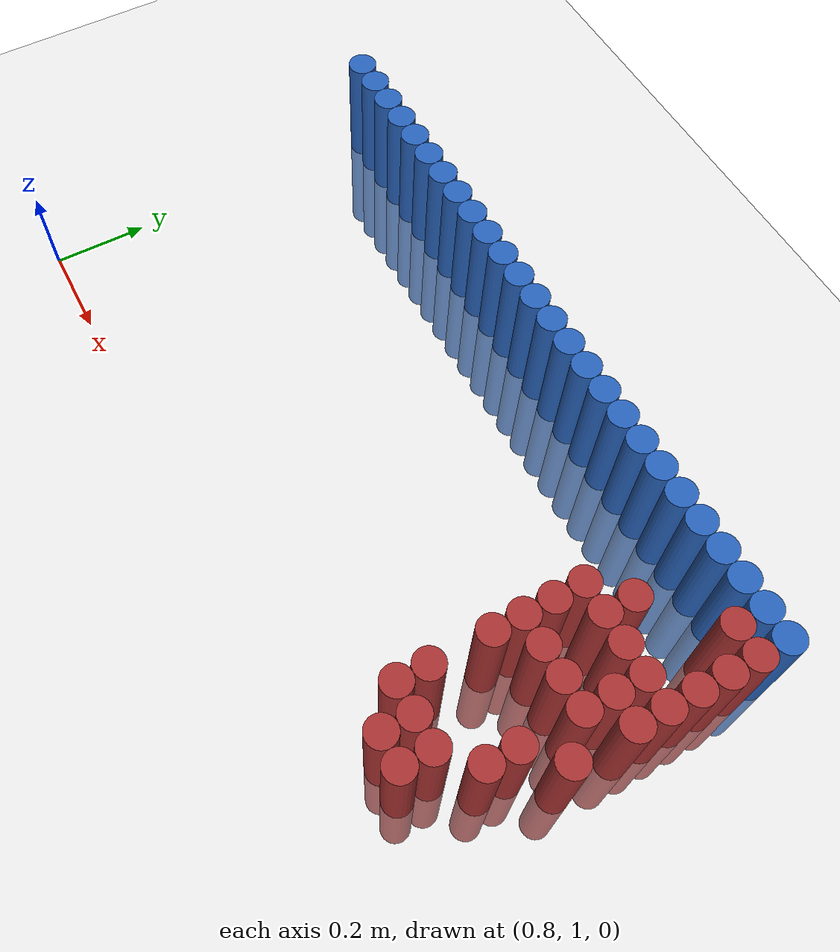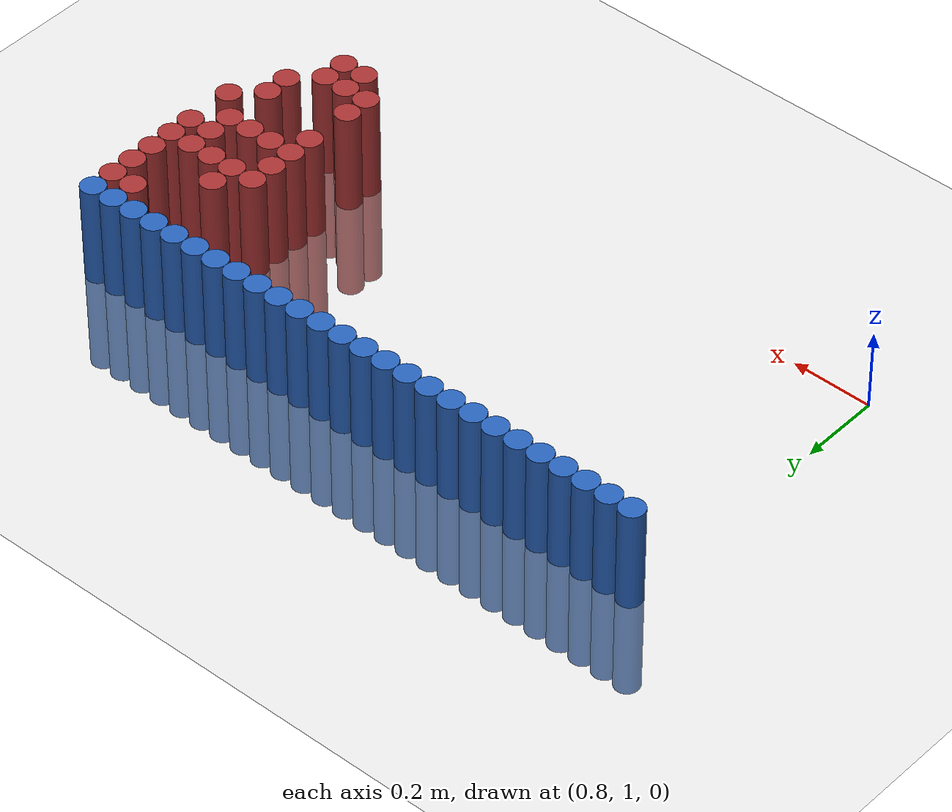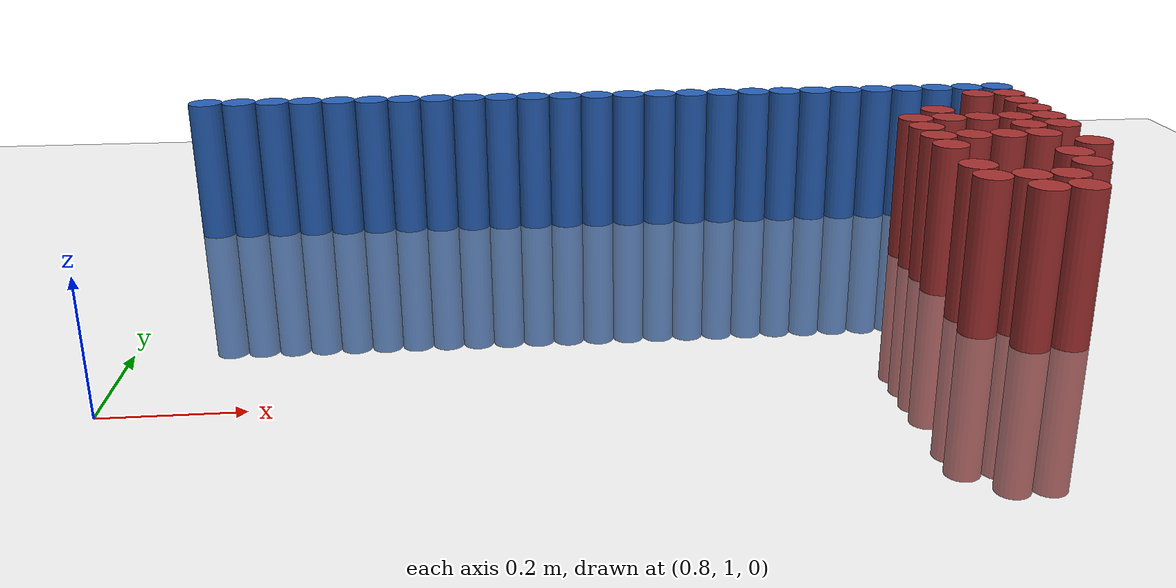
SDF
<sdf version="1.6">
 <world name="default">
  <model name="ground_plane">
   <static>1</static>
   <link name="link">
    <collision name="collision">
     <geometry><plane><normal>0 0 1</normal><size>100 100</size></plane></geometry>
     <surface><friction><ode><mu>100</mu><mu2>50</mu2></ode></friction></surface>
    </collision>
    <visual name="visual">
     <cast_shadows>0</cast_shadows>
     <geometry><plane><normal>0 0 1</normal><size>100 100</size></plane></geometry>
     <material>
      <script><uri>file://media/materials/scripts/gazebo.material</uri><name>Gazebo/Grey</name></script>
     </material>
    </visual>
   </link>
  </model>
  <model name="unit_cylinder_54">
   <static>1</static>
   <pose>0.810000 1.770000 0.000000 0.000000 0.000000 0.000000</pose>
   <link name="link">
    <inertial>
     <mass>1</mass>
     <inertia><ixx>0.145833</ixx><ixy>0</ixy><ixz>0</ixz><iyy>0.145833</iyy><iyz>0</iyz><izz>0.125</izz></inertia>
    </inertial>
    <collision name="collision">
     <geometry><cylinder><radius>0.030000</radius><length>0.5</length></cylinder></geometry>
    </collision>
    <visual name="visual">
     <geometry><cylinder><radius>0.030000</radius><length>0.5</length></cylinder></geometry>
     <material>
      <ambient>0.152000 0.379000 0.720000 1</ambient>
      <diffuse>0.152000 0.379000 0.720000 1</diffuse>
     </material>
     <material>
      <script><name>Gazebo/Grey</name><uri>file://media/materials/scripts/gazebo.material</uri></script>
     </material>
    </visual>
   </link>
  </model>
  <model name="unit_cylinder_56">
   <static>1</static>
   <pose>0.870000 1.770000 0.000000 0.000000 0.000000 0.000000</pose>
   <link name="link">
    <inertial>
     <mass>1</mass>
     <inertia><ixx>0.145833</ixx><ixy>0</ixy><ixz>0</ixz><iyy>0.145833</iyy><iyz>0</iyz><izz>0.125</izz></inertia>
    </inertial>
    <collision name="collision">
     <geometry><cylinder><radius>0.030000</radius><length>0.5</length></cylinder></geometry>
    </collision>
    <visual name="visual">
     <geometry><cylinder><radius>0.030000</radius><length>0.5</length></cylinder></geometry>
     <material>
      <ambient>0.152000 0.379000 0.720000 1</ambient>
      <diffuse>0.152000 0.379000 0.720000 1</diffuse>
     </material>
     <material>
      <script><name>Gazebo/Grey</name><uri>file://media/materials/scripts/gazebo.material</uri></script>
     </material>
    </visual>
   </link>
  </model>
  <model name="unit_cylinder_58">
   <static>1</static>
   <pose>0.930000 1.770000 0.000000 0.000000 0.000000 0.000000</pose>
   <link name="link">
    <inertial>
     <mass>1</mass>
     <inertia><ixx>0.145833</ixx><ixy>0</ixy><ixz>0</ixz><iyy>0.145833</iyy><iyz>0</iyz><izz>0.125</izz></inertia>
    </inertial>
    <collision name="collision">
     <geometry><cylinder><radius>0.030000</radius><length>0.5</length></cylinder></geometry>
    </collision>
    <visual name="visual">
     <geometry><cylinder><radius>0.030000</radius><length>0.5</length></cylinder></geometry>
     <material>
      <ambient>0.152000 0.379000 0.720000 1</ambient>
      <diffuse>0.152000 0.379000 0.720000 1</diffuse>
     </material>
     <material>
      <script><name>Gazebo/Grey</name><uri>file://media/materials/scripts/gazebo.material</uri></script>
     </material>
    </visual>
   </link>
  </model>
  <model name="unit_cylinder_60">
   <static>1</static>
   <pose>0.990000 1.770000 0.000000 0.000000 0.000000 0.000000</pose>
   <link name="link">
    <inertial>
     <mass>1</mass>
     <inertia><ixx>0.145833</ixx><ixy>0</ixy><ixz>0</ixz><iyy>0.145833</iyy><iyz>0</iyz><izz>0.125</izz></inertia>
    </inertial>
    <collision name="collision">
     <geometry><cylinder><radius>0.030000</radius><length>0.5</length></cylinder></geometry>
    </collision>
    <visual name="visual">
     <geometry><cylinder><radius>0.030000</radius><length>0.5</length></cylinder></geometry>
     <material>
      <ambient>0.152000 0.379000 0.720000 1</ambient>
      <diffuse>0.152000 0.379000 0.720000 1</diffuse>
     </material>
     <material>
      <script><name>Gazebo/Grey</name><uri>file://media/materials/scripts/gazebo.material</uri></script>
     </material>
    </visual>
   </link>
  </model>
  <model name="unit_cylinder_62">
   <static>1</static>
   <pose>1.050000 1.770000 0.000000 0.000000 0.000000 0.000000</pose>
   <link name="link">
    <inertial>
     <mass>1</mass>
     <inertia><ixx>0.145833</ixx><ixy>0</ixy><ixz>0</ixz><iyy>0.145833</iyy><iyz>0</iyz><izz>0.125</izz></inertia>
    </inertial>
    <collision name="collision">
     <geometry><cylinder><radius>0.030000</radius><length>0.5</length></cylinder></geometry>
    </collision>
    <visual name="visual">
     <geometry><cylinder><radius>0.030000</radius><length>0.5</length></cylinder></geometry>
     <material>
      <ambient>0.152000 0.379000 0.720000 1</ambient>
      <diffuse>0.152000 0.379000 0.720000 1</diffuse>
     </material>
     <material>
      <script><name>Gazebo/Grey</name><uri>file://media/materials/scripts/gazebo.material</uri></script>
     </material>
    </visual>
   </link>
  </model>
  <model name="unit_cylinder_64">
   <static>1</static>
   <pose>1.110000 1.770000 0.000000 0.000000 0.000000 0.000000</pose>
   <link name="link">
    <inertial>
     <mass>1</mass>
     <inertia><ixx>0.145833</ixx><ixy>0</ixy><ixz>0</ixz><iyy>0.145833</iyy><iyz>0</iyz><izz>0.125</izz></inertia>
    </inertial>
    <collision name="collision">
     <geometry><cylinder><radius>0.030000</radius><length>0.5</length></cylinder></geometry>
    </collision>
    <visual name="visual">
     <geometry><cylinder><radius>0.030000</radius><length>0.5</length></cylinder></geometry>
     <material>
      <ambient>0.152000 0.379000 0.720000 1</ambient>
      <diffuse>0.152000 0.379000 0.720000 1</diffuse>
     </material>
     <material>
      <script><name>Gazebo/Grey</name><uri>file://media/materials/scripts/gazebo.material</uri></script>
     </material>
    </visual>
   </link>
  </model>
  <model name="unit_cylinder_66">
   <static>1</static>
   <pose>1.170000 1.770000 0.000000 0.000000 0.000000 0.000000</pose>
   <link name="link">
    <inertial>
     <mass>1</mass>
     <inertia><ixx>0.145833</ixx><ixy>0</ixy><ixz>0</ixz><iyy>0.145833</iyy><iyz>0</iyz><izz>0.125</izz></inertia>
    </inertial>
    <collision name="collision">
     <geometry><cylinder><radius>0.030000</radius><length>0.5</length></cylinder></geometry>
    </collision>
    <visual name="visual">
     <geometry><cylinder><radius>0.030000</radius><length>0.5</length></cylinder></geometry>
     <material>
      <ambient>0.152000 0.379000 0.720000 1</ambient>
      <diffuse>0.152000 0.379000 0.720000 1</diffuse>
     </material>
     <material>
      <script><name>Gazebo/Grey</name><uri>file://media/materials/scripts/gazebo.material</uri></script>
     </material>
    </visual>
   </link>
  </model>
  <model name="unit_cylinder_68">
   <static>1</static>
   <pose>1.230000 1.770000 0.000000 0.000000 0.000000 0.000000</pose>
   <link name="link">
    <inertial>
     <mass>1</mass>
     <inertia><ixx>0.145833</ixx><ixy>0</ixy><ixz>0</ixz><iyy>0.145833</iyy><iyz>0</iyz><izz>0.125</izz></inertia>
    </inertial>
    <collision name="collision">
     <geometry><cylinder><radius>0.030000</radius><length>0.5</length></cylinder></geometry>
    </collision>
    <visual name="visual">
     <geometry><cylinder><radius>0.030000</radius><length>0.5</length></cylinder></geometry>
     <material>
      <ambient>0.152000 0.379000 0.720000 1</ambient>
      <diffuse>0.152000 0.379000 0.720000 1</diffuse>
     </material>
     <material>
      <script><name>Gazebo/Grey</name><uri>file://media/materials/scripts/gazebo.material</uri></script>
     </material>
    </visual>
   </link>
  </model>
  <model name="unit_cylinder_70">
   <static>1</static>
   <pose>1.290000 1.770000 0.000000 0.000000 0.000000 0.000000</pose>
   <link name="link">
    <inertial>
     <mass>1</mass>
     <inertia><ixx>0.145833</ixx><ixy>0</ixy><ixz>0</ixz><iyy>0.145833</iyy><iyz>0</iyz><izz>0.125</izz></inertia>
    </inertial>
    <collision name="collision">
     <geometry><cylinder><radius>0.030000</radius><length>0.5</length></cylinder></geometry>
    </collision>
    <visual name="visual">
     <geometry><cylinder><radius>0.030000</radius><length>0.5</length></cylinder></geometry>
     <material>
      <ambient>0.152000 0.379000 0.720000 1</ambient>
      <diffuse>0.152000 0.379000 0.720000 1</diffuse>
     </material>
     <material>
      <script><name>Gazebo/Grey</name><uri>file://media/materials/scripts/gazebo.material</uri></script>
     </material>
    </visual>
   </link>
  </model>
  <model name="unit_cylinder_72">
   <static>1</static>
   <pose>1.350000 1.770000 0.000000 0.000000 0.000000 0.000000</pose>
   <link name="link">
    <inertial>
     <mass>1</mass>
     <inertia><ixx>0.145833</ixx><ixy>0</ixy><ixz>0</ixz><iyy>0.145833</iyy><iyz>0</iyz><izz>0.125</izz></inertia>
    </inertial>
    <collision name="collision">
     <geometry><cylinder><radius>0.030000</radius><length>0.5</length></cylinder></geometry>
    </collision>
    <visual name="visual">
     <geometry><cylinder><radius>0.030000</radius><length>0.5</length></cylinder></geometry>
     <material>
      <ambient>0.152000 0.379000 0.720000 1</ambient>
      <diffuse>0.152000 0.379000 0.720000 1</diffuse>
     </material>
     <material>
      <script><name>Gazebo/Grey</name><uri>file://media/materials/scripts/gazebo.material</uri></script>
     </material>
    </visual>
   </link>
  </model>
  <model name="unit_cylinder_74">
   <static>1</static>
   <pose>1.410000 1.770000 0.000000 0.000000 0.000000 0.000000</pose>
   <link name="link">
    <inertial>
     <mass>1</mass>
     <inertia><ixx>0.145833</ixx><ixy>0</ixy><ixz>0</ixz><iyy>0.145833</iyy><iyz>0</iyz><izz>0.125</izz></inertia>
    </inertial>
    <collision name="collision">
     <geometry><cylinder><radius>0.030000</radius><length>0.5</length></cylinder></geometry>
    </collision>
    <visual name="visual">
     <geometry><cylinder><radius>0.030000</radius><length>0.5</length></cylinder></geometry>
     <material>
      <ambient>0.152000 0.379000 0.720000 1</ambient>
      <diffuse>0.152000 0.379000 0.720000 1</diffuse>
     </material>
     <material>
      <script><name>Gazebo/Grey</name><uri>file://media/materials/scripts/gazebo.material</uri></script>
     </material>
    </visual>
   </link>
  </model>
  <model name="unit_cylinder_76">
   <static>1</static>
   <pose>1.470000 1.770000 0.000000 0.000000 0.000000 0.000000</pose>
   <link name="link">
    <inertial>
     <mass>1</mass>
     <inertia><ixx>0.145833</ixx><ixy>0</ixy><ixz>0</ixz><iyy>0.145833</iyy><iyz>0</iyz><izz>0.125</izz></inertia>
    </inertial>
    <collision name="collision">
     <geometry><cylinder><radius>0.030000</radius><length>0.5</length></cylinder></geometry>
    </collision>
    <visual name="visual">
     <geometry><cylinder><radius>0.030000</radius><length>0.5</length></cylinder></geometry>
     <material>
      <ambient>0.152000 0.379000 0.720000 1</ambient>
      <diffuse>0.152000 0.379000 0.720000 1</diffuse>
     </material>
     <material>
      <script><name>Gazebo/Grey</name><uri>file://media/materials/scripts/gazebo.material</uri></script>
     </material>
    </visual>
   </link>
  </model>
  <model name="unit_cylinder_78">
   <static>1</static>
   <pose>1.530000 1.770000 0.000000 0.000000 0.000000 0.000000</pose>
   <link name="link">
    <inertial>
     <mass>1</mass>
     <inertia><ixx>0.145833</ixx><ixy>0</ixy><ixz>0</ixz><iyy>0.145833</iyy><iyz>0</iyz><izz>0.125</izz></inertia>
    </inertial>
    <collision name="collision">
     <geometry><cylinder><radius>0.030000</radius><length>0.5</length></cylinder></geometry>
    </collision>
    <visual name="visual">
     <geometry><cylinder><radius>0.030000</radius><length>0.5</length></cylinder></geometry>
     <material>
      <ambient>0.152000 0.379000 0.720000 1</ambient>
      <diffuse>0.152000 0.379000 0.720000 1</diffuse>
     </material>
     <material>
      <script><name>Gazebo/Grey</name><uri>file://media/materials/scripts/gazebo.material</uri></script>
     </material>
    </visual>
   </link>
  </model>
  <model name="unit_cylinder_80">
   <static>1</static>
   <pose>1.590000 1.770000 0.000000 0.000000 0.000000 0.000000</pose>
   <link name="link">
    <inertial>
     <mass>1</mass>
     <inertia><ixx>0.145833</ixx><ixy>0</ixy><ixz>0</ixz><iyy>0.145833</iyy><iyz>0</iyz><izz>0.125</izz></inertia>
    </inertial>
    <collision name="collision">
     <geometry><cylinder><radius>0.030000</radius><length>0.5</length></cylinder></geometry>
    </collision>
    <visual name="visual">
     <geometry><cylinder><radius>0.030000</radius><length>0.5</length></cylinder></geometry>
     <material>
      <ambient>0.152000 0.379000 0.720000 1</ambient>
      <diffuse>0.152000 0.379000 0.720000 1</diffuse>
     </material>
     <material>
      <script><name>Gazebo/Grey</name><uri>file://media/materials/scripts/gazebo.material</uri></script>
     </material>
    </visual>
   </link>
  </model>
  <model name="unit_cylinder_82">
   <static>1</static>
   <pose>1.650000 1.770000 0.000000 0.000000 0.000000 0.000000</pose>
   <link name="link">
    <inertial>
     <mass>1</mass>
     <inertia><ixx>0.145833</ixx><ixy>0</ixy><ixz>0</ixz><iyy>0.145833</iyy><iyz>0</iyz><izz>0.125</izz></inertia>
    </inertial>
    <collision name="collision">
     <geometry><cylinder><radius>0.030000</radius><length>0.5</length></cylinder></geometry>
    </collision>
    <visual name="visual">
     <geometry><cylinder><radius>0.030000</radius><length>0.5</length></cylinder></geometry>
     <material>
      <ambient>0.152000 0.379000 0.720000 1</ambient>
      <diffuse>0.152000 0.379000 0.720000 1</diffuse>
     </material>
     <material>
      <script><name>Gazebo/Grey</name><uri>file://media/materials/scripts/gazebo.material</uri></script>
     </material>
    </visual>
   </link>
  </model>
  <model name="unit_cylinder_84">
   <static>1</static>
   <pose>1.710000 1.770000 0.000000 0.000000 0.000000 0.000000</pose>
   <link name="link">
    <inertial>
     <mass>1</mass>
     <inertia><ixx>0.145833</ixx><ixy>0</ixy><ixz>0</ixz><iyy>0.145833</iyy><iyz>0</iyz><izz>0.125</izz></inertia>
    </inertial>
    <collision name="collision">
     <geometry><cylinder><radius>0.030000</radius><length>0.5</length></cylinder></geometry>
    </collision>
    <visual name="visual">
     <geometry><cylinder><radius>0.030000</radius><length>0.5</length></cylinder></geometry>
     <material>
      <ambient>0.152000 0.379000 0.720000 1</ambient>
      <diffuse>0.152000 0.379000 0.720000 1</diffuse>
     </material>
     <material>
      <script><name>Gazebo/Grey</name><uri>file://media/materials/scripts/gazebo.material</uri></script>
     </material>
    </visual>
   </link>
  </model>
  <model name="unit_cylinder_86">
   <static>1</static>
   <pose>1.770000 1.770000 0.000000 0.000000 0.000000 0.000000</pose>
   <link name="link">
    <inertial>
     <mass>1</mass>
     <inertia><ixx>0.145833</ixx><ixy>0</ixy><ixz>0</ixz><iyy>0.145833</iyy><iyz>0</iyz><izz>0.125</izz></inertia>
    </inertial>
    <collision name="collision">
     <geometry><cylinder><radius>0.030000</radius><length>0.5</length></cylinder></geometry>
    </collision>
    <visual name="visual">
     <geometry><cylinder><radius>0.030000</radius><length>0.5</length></cylinder></geometry>
     <material>
      <ambient>0.152000 0.379000 0.720000 1</ambient>
      <diffuse>0.152000 0.379000 0.720000 1</diffuse>
     </material>
     <material>
      <script><name>Gazebo/Grey</name><uri>file://media/materials/scripts/gazebo.material</uri></script>
     </material>
    </visual>
   </link>
  </model>
  <model name="unit_cylinder_88">
   <static>1</static>
   <pose>1.830000 1.770000 0.000000 0.000000 0.000000 0.000000</pose>
   <link name="link">
    <inertial>
     <mass>1</mass>
     <inertia><ixx>0.145833</ixx><ixy>0</ixy><ixz>0</ixz><iyy>0.145833</iyy><iyz>0</iyz><izz>0.125</izz></inertia>
    </inertial>
    <collision name="collision">
     <geometry><cylinder><radius>0.030000</radius><length>0.5</length></cylinder></geometry>
    </collision>
    <visual name="visual">
     <geometry><cylinder><radius>0.030000</radius><length>0.5</length></cylinder></geometry>
     <material>
      <ambient>0.152000 0.379000 0.720000 1</ambient>
      <diffuse>0.152000 0.379000 0.720000 1</diffuse>
     </material>
     <material>
      <script><name>Gazebo/Grey</name><uri>file://media/materials/scripts/gazebo.material</uri></script>
     </material>
    </visual>
   </link>
  </model>
  <model name="unit_cylinder_90">
   <static>1</static>
   <pose>1.890000 1.770000 0.000000 0.000000 0.000000 0.000000</pose>
   <link name="link">
    <inertial>
     <mass>1</mass>
     <inertia><ixx>0.145833</ixx><ixy>0</ixy><ixz>0</ixz><iyy>0.145833</iyy><iyz>0</iyz><izz>0.125</izz></inertia>
    </inertial>
    <collision name="collision">
     <geometry><cylinder><radius>0.030000</radius><length>0.5</length></cylinder></geometry>
    </collision>
    <visual name="visual">
     <geometry><cylinder><radius>0.030000</radius><length>0.5</length></cylinder></geometry>
     <material>
      <ambient>0.152000 0.379000 0.720000 1</ambient>
      <diffuse>0.152000 0.379000 0.720000 1</diffuse>
     </material>
     <material>
      <script><name>Gazebo/Grey</name><uri>file://media/materials/scripts/gazebo.material</uri></script>
     </material>
    </visual>
   </link>
  </model>
  <model name="unit_cylinder_92">
   <static>1</static>
   <pose>1.950000 1.770000 0.000000 0.000000 0.000000 0.000000</pose>
   <link name="link">
    <inertial>
     <mass>1</mass>
     <inertia><ixx>0.145833</ixx><ixy>0</ixy><ixz>0</ixz><iyy>0.145833</iyy><iyz>0</iyz><izz>0.125</izz></inertia>
    </inertial>
    <collision name="collision">
     <geometry><cylinder><radius>0.030000</radius><length>0.5</length></cylinder></geometry>
    </collision>
    <visual name="visual">
     <geometry><cylinder><radius>0.030000</radius><length>0.5</length></cylinder></geometry>
     <material>
      <ambient>0.152000 0.379000 0.720000 1</ambient>
      <diffuse>0.152000 0.379000 0.720000 1</diffuse>
     </material>
     <material>
      <script><name>Gazebo/Grey</name><uri>file://media/materials/scripts/gazebo.material</uri></script>
     </material>
    </visual>
   </link>
  </model>
  <model name="unit_cylinder_94">
   <static>1</static>
   <pose>2.010000 1.770000 0.000000 0.000000 0.000000 0.000000</pose>
   <link name="link">
    <inertial>
     <mass>1</mass>
     <inertia><ixx>0.145833</ixx><ixy>0</ixy><ixz>0</ixz><iyy>0.145833</iyy><iyz>0</iyz><izz>0.125</izz></inertia>
    </inertial>
    <collision name="collision">
     <geometry><cylinder><radius>0.030000</radius><length>0.5</length></cylinder></geometry>
    </collision>
    <visual name="visual">
     <geometry><cylinder><radius>0.030000</radius><length>0.5</length></cylinder></geometry>
     <material>
      <ambient>0.152000 0.379000 0.720000 1</ambient>
      <diffuse>0.152000 0.379000 0.720000 1</diffuse>
     </material>
     <material>
      <script><name>Gazebo/Grey</name><uri>file://media/materials/scripts/gazebo.material</uri></script>
     </material>
    </visual>
   </link>
  </model>
  <model name="unit_cylinder_95">
   <static>1</static>
   <pose>2.070000 1.770000 0.000000 0.000000 0.000000 0.000000</pose>
   <link name="link">
    <inertial>
     <mass>1</mass>
     <inertia><ixx>0.145833</ixx><ixy>0</ixy><ixz>0</ixz><iyy>0.145833</iyy><iyz>0</iyz><izz>0.125</izz></inertia>
    </inertial>
    <collision name="collision">
     <geometry><cylinder><radius>0.030000</radius><length>0.5</length></cylinder></geometry>
    </collision>
    <visual name="visual">
     <geometry><cylinder><radius>0.030000</radius><length>0.5</length></cylinder></geometry>
     <material>
      <ambient>0.152000 0.379000 0.720000 1</ambient>
      <diffuse>0.152000 0.379000 0.720000 1</diffuse>
     </material>
     <material>
      <script><name>Gazebo/Grey</name><uri>file://media/materials/scripts/gazebo.material</uri></script>
     </material>
    </visual>
   </link>
  </model>
  <model name="unit_cylinder_96">
   <static>1</static>
   <pose>2.130000 1.770000 0.000000 0.000000 0.000000 0.000000</pose>
   <link name="link">
    <inertial>
     <mass>1</mass>
     <inertia><ixx>0.145833</ixx><ixy>0</ixy><ixz>0</ixz><iyy>0.145833</iyy><iyz>0</iyz><izz>0.125</izz></inertia>
    </inertial>
    <collision name="collision">
     <geometry><cylinder><radius>0.030000</radius><length>0.5</length></cylinder></geometry>
    </collision>
    <visual name="visual">
     <geometry><cylinder><radius>0.030000</radius><length>0.5</length></cylinder></geometry>
     <material>
      <ambient>0.152000 0.379000 0.720000 1</ambient>
      <diffuse>0.152000 0.379000 0.720000 1</diffuse>
     </material>
     <material>
      <script><name>Gazebo/Grey</name><uri>file://media/materials/scripts/gazebo.material</uri></script>
     </material>
    </visual>
   </link>
  </model>
  <model name="unit_cylinder_97">
   <static>1</static>
   <pose>2.190000 1.770000 0.000000 0.000000 0.000000 0.000000</pose>
   <link name="link">
    <inertial>
     <mass>1</mass>
     <inertia><ixx>0.145833</ixx><ixy>0</ixy><ixz>0</ixz><iyy>0.145833</iyy><iyz>0</iyz><izz>0.125</izz></inertia>
    </inertial>
    <collision name="collision">
     <geometry><cylinder><radius>0.030000</radius><length>0.5</length></cylinder></geometry>
    </collision>
    <visual name="visual">
     <geometry><cylinder><radius>0.030000</radius><length>0.5</length></cylinder></geometry>
     <material>
      <ambient>0.152000 0.379000 0.720000 1</ambient>
      <diffuse>0.152000 0.379000 0.720000 1</diffuse>
     </material>
     <material>
      <script><name>Gazebo/Grey</name><uri>file://media/materials/scripts/gazebo.material</uri></script>
     </material>
    </visual>
   </link>
  </model>
  <model name="unit_cylinder_98">
   <static>1</static>
   <pose>2.250000 1.770000 0.000000 0.000000 0.000000 0.000000</pose>
   <link name="link">
    <inertial>
     <mass>1</mass>
     <inertia><ixx>0.145833</ixx><ixy>0</ixy><ixz>0</ixz><iyy>0.145833</iyy><iyz>0</iyz><izz>0.125</izz></inertia>
    </inertial>
    <collision name="collision">
     <geometry><cylinder><radius>0.030000</radius><length>0.5</length></cylinder></geometry>
    </collision>
    <visual name="visual">
     <geometry><cylinder><radius>0.030000</radius><length>0.5</length></cylinder></geometry>
     <material>
      <ambient>0.152000 0.379000 0.720000 1</ambient>
      <diffuse>0.152000 0.379000 0.720000 1</diffuse>
     </material>
     <material>
      <script><name>Gazebo/Grey</name><uri>file://media/materials/scripts/gazebo.material</uri></script>
     </material>
    </visual>
   </link>
  </model>
  <model name="unit_cylinder_99">
   <static>1</static>
   <pose>2.310000 1.770000 0.000000 0.000000 0.000000 0.000000</pose>
   <link name="link">
    <inertial>
     <mass>1</mass>
     <inertia><ixx>0.145833</ixx><ixy>0</ixy><ixz>0</ixz><iyy>0.145833</iyy><iyz>0</iyz><izz>0.125</izz></inertia>
    </inertial>
    <collision name="collision">
     <geometry><cylinder><radius>0.030000</radius><length>0.5</length></cylinder></geometry>
    </collision>
    <visual name="visual">
     <geometry><cylinder><radius>0.030000</radius><length>0.5</length></cylinder></geometry>
     <material>
      <ambient>0.152000 0.379000 0.720000 1</ambient>
      <diffuse>0.152000 0.379000 0.720000 1</diffuse>
     </material>
     <material>
      <script><name>Gazebo/Grey</name><uri>file://media/materials/scripts/gazebo.material</uri></script>
     </material>
    </visual>
   </link>
  </model>
  <model name="unit_cylinder_125">
   <static>1</static>
   <pose>2.250000 1.710000 0.000000 0.000000 0.000000 0.000000</pose>
   <link name="link">
    <inertial>
     <mass>1</mass>
     <inertia><ixx>0.145833</ixx><ixy>0</ixy><ixz>0</ixz><iyy>0.145833</iyy><iyz>0</iyz><izz>0.125</izz></inertia>
    </inertial>
    <collision name="collision">
     <geometry><cylinder><radius>0.030000</radius><length>0.5</length></cylinder></geometry>
    </collision>
    <visual name="visual">
     <geometry><cylinder><radius>0.030000</radius><length>0.5</length></cylinder></geometry>
     <material>
      <ambient>0.648000 0.192000 0.192000 1</ambient>
      <diffuse>0.648000 0.192000 0.192000 1</diffuse>
     </material>
     <material>
      <script><name>Gazebo/Grey</name><uri>file://media/materials/scripts/gazebo.material</uri></script>
     </material>
    </visual>
   </link>
  </model>
  <model name="unit_cylinder_126">
   <static>1</static>
   <pose>2.310000 1.710000 0.000000 0.000000 0.000000 0.000000</pose>
   <link name="link">
    <inertial>
     <mass>1</mass>
     <inertia><ixx>0.145833</ixx><ixy>0</ixy><ixz>0</ixz><iyy>0.145833</iyy><iyz>0</iyz><izz>0.125</izz></inertia>
    </inertial>
    <collision name="collision">
     <geometry><cylinder><radius>0.030000</radius><length>0.5</length></cylinder></geometry>
    </collision>
    <visual name="visual">
     <geometry><cylinder><radius>0.030000</radius><length>0.5</length></cylinder></geometry>
     <material>
      <ambient>0.648000 0.192000 0.192000 1</ambient>
      <diffuse>0.648000 0.192000 0.192000 1</diffuse>
     </material>
     <material>
      <script><name>Gazebo/Grey</name><uri>file://media/materials/scripts/gazebo.material</uri></script>
     </material>
    </visual>
   </link>
  </model>
  <model name="unit_cylinder_136">
   <static>1</static>
   <pose>2.310000 1.650000 0.000000 0.000000 0.000000 0.000000</pose>
   <link name="link">
    <inertial>
     <mass>1</mass>
     <inertia><ixx>0.145833</ixx><ixy>0</ixy><ixz>0</ixz><iyy>0.145833</iyy><iyz>0</iyz><izz>0.125</izz></inertia>
    </inertial>
    <collision name="collision">
     <geometry><cylinder><radius>0.030000</radius><length>0.5</length></cylinder></geometry>
    </collision>
    <visual name="visual">
     <geometry><cylinder><radius>0.030000</radius><length>0.5</length></cylinder></geometry>
     <material>
      <ambient>0.648000 0.192000 0.192000 1</ambient>
      <diffuse>0.648000 0.192000 0.192000 1</diffuse>
     </material>
     <material>
      <script><name>Gazebo/Grey</name><uri>file://media/materials/scripts/gazebo.material</uri></script>
     </material>
    </visual>
   </link>
  </model>
  <model name="unit_cylinder_142">
   <static>1</static>
   <pose>2.130000 1.590000 0.000000 0.000000 0.000000 0.000000</pose>
   <link name="link">
    <inertial>
     <mass>1</mass>
     <inertia><ixx>0.145833</ixx><ixy>0</ixy><ixz>0</ixz><iyy>0.145833</iyy><iyz>0</iyz><izz>0.125</izz></inertia>
    </inertial>
    <collision name="collision">
     <geometry><cylinder><radius>0.030000</radius><length>0.5</length></cylinder></geometry>
    </collision>
    <visual name="visual">
     <geometry><cylinder><radius>0.030000</radius><length>0.5</length></cylinder></geometry>
     <material>
      <ambient>0.648000 0.192000 0.192000 1</ambient>
      <diffuse>0.648000 0.192000 0.192000 1</diffuse>
     </material>
     <material>
      <script><name>Gazebo/Grey</name><uri>file://media/materials/scripts/gazebo.material</uri></script>
     </material>
    </visual>
   </link>
  </model>
  <model name="unit_cylinder_143">
   <static>1</static>
   <pose>2.310000 1.590000 0.000000 0.000000 0.000000 0.000000</pose>
   <link name="link">
    <inertial>
     <mass>1</mass>
     <inertia><ixx>0.145833</ixx><ixy>0</ixy><ixz>0</ixz><iyy>0.145833</iyy><iyz>0</iyz><izz>0.125</izz></inertia>
    </inertial>
    <collision name="collision">
     <geometry><cylinder><radius>0.030000</radius><length>0.5</length></cylinder></geometry>
    </collision>
    <visual name="visual">
     <geometry><cylinder><radius>0.030000</radius><length>0.5</length></cylinder></geometry>
     <material>
      <ambient>0.648000 0.192000 0.192000 1</ambient>
      <diffuse>0.648000 0.192000 0.192000 1</diffuse>
     </material>
     <material>
      <script><name>Gazebo/Grey</name><uri>file://media/materials/scripts/gazebo.material</uri></script>
     </material>
    </visual>
   </link>
  </model>
  <model name="unit_cylinder_152">
   <static>1</static>
   <pose>2.070000 1.530000 0.000000 0.000000 0.000000 0.000000</pose>
   <link name="link">
    <inertial>
     <mass>1</mass>
     <inertia><ixx>0.145833</ixx><ixy>0</ixy><ixz>0</ixz><iyy>0.145833</iyy><iyz>0</iyz><izz>0.125</izz></inertia>
    </inertial>
    <collision name="collision">
     <geometry><cylinder><radius>0.030000</radius><length>0.5</length></cylinder></geometry>
    </collision>
    <visual name="visual">
     <geometry><cylinder><radius>0.030000</radius><length>0.5</length></cylinder></geometry>
     <material>
      <ambient>0.648000 0.192000 0.192000 1</ambient>
      <diffuse>0.648000 0.192000 0.192000 1</diffuse>
     </material>
     <material>
      <script><name>Gazebo/Grey</name><uri>file://media/materials/scripts/gazebo.material</uri></script>
     </material>
    </visual>
   </link>
  </model>
  <model name="unit_cylinder_153">
   <static>1</static>
   <pose>2.130000 1.530000 0.000000 0.000000 0.000000 0.000000</pose>
   <link name="link">
    <inertial>
     <mass>1</mass>
     <inertia><ixx>0.145833</ixx><ixy>0</ixy><ixz>0</ixz><iyy>0.145833</iyy><iyz>0</iyz><izz>0.125</izz></inertia>
    </inertial>
    <collision name="collision">
     <geometry><cylinder><radius>0.030000</radius><length>0.5</length></cylinder></geometry>
    </collision>
    <visual name="visual">
     <geometry><cylinder><radius>0.030000</radius><length>0.5</length></cylinder></geometry>
     <material>
      <ambient>0.648000 0.192000 0.192000 1</ambient>
      <diffuse>0.648000 0.192000 0.192000 1</diffuse>
     </material>
     <material>
      <script><name>Gazebo/Grey</name><uri>file://media/materials/scripts/gazebo.material</uri></script>
     </material>
    </visual>
   </link>
  </model>
  <model name="unit_cylinder_154">
   <static>1</static>
   <pose>2.190000 1.530000 0.000000 0.000000 0.000000 0.000000</pose>
   <link name="link">
    <inertial>
     <mass>1</mass>
     <inertia><ixx>0.145833</ixx><ixy>0</ixy><ixz>0</ixz><iyy>0.145833</iyy><iyz>0</iyz><izz>0.125</izz></inertia>
    </inertial>
    <collision name="collision">
     <geometry><cylinder><radius>0.030000</radius><length>0.5</length></cylinder></geometry>
    </collision>
    <visual name="visual">
     <geometry><cylinder><radius>0.030000</radius><length>0.5</length></cylinder></geometry>
     <material>
      <ambient>0.648000 0.192000 0.192000 1</ambient>
      <diffuse>0.648000 0.192000 0.192000 1</diffuse>
     </material>
     <material>
      <script><name>Gazebo/Grey</name><uri>file://media/materials/scripts/gazebo.material</uri></script>
     </material>
    </visual>
   </link>
  </model>
  <model name="unit_cylinder_155">
   <static>1</static>
   <pose>2.250000 1.530000 0.000000 0.000000 0.000000 0.000000</pose>
   <link name="link">
    <inertial>
     <mass>1</mass>
     <inertia><ixx>0.145833</ixx><ixy>0</ixy><ixz>0</ixz><iyy>0.145833</iyy><iyz>0</iyz><izz>0.125</izz></inertia>
    </inertial>
    <collision name="collision">
     <geometry><cylinder><radius>0.030000</radius><length>0.5</length></cylinder></geometry>
    </collision>
    <visual name="visual">
     <geometry><cylinder><radius>0.030000</radius><length>0.5</length></cylinder></geometry>
     <material>
      <ambient>0.648000 0.192000 0.192000 1</ambient>
      <diffuse>0.648000 0.192000 0.192000 1</diffuse>
     </material>
     <material>
      <script><name>Gazebo/Grey</name><uri>file://media/materials/scripts/gazebo.material</uri></script>
     </material>
    </visual>
   </link>
  </model>
  <model name="unit_cylinder_156">
   <static>1</static>
   <pose>2.310000 1.530000 0.000000 0.000000 0.000000 0.000000</pose>
   <link name="link">
    <inertial>
     <mass>1</mass>
     <inertia><ixx>0.145833</ixx><ixy>0</ixy><ixz>0</ixz><iyy>0.145833</iyy><iyz>0</iyz><izz>0.125</izz></inertia>
    </inertial>
    <collision name="collision">
     <geometry><cylinder><radius>0.030000</radius><length>0.5</length></cylinder></geometry>
    </collision>
    <visual name="visual">
     <geometry><cylinder><radius>0.030000</radius><length>0.5</length></cylinder></geometry>
     <material>
      <ambient>0.648000 0.192000 0.192000 1</ambient>
      <diffuse>0.648000 0.192000 0.192000 1</diffuse>
     </material>
     <material>
      <script><name>Gazebo/Grey</name><uri>file://media/materials/scripts/gazebo.material</uri></script>
     </material>
    </visual>
   </link>
  </model>
  <model name="unit_cylinder_168">
   <static>1</static>
   <pose>2.070000 1.470000 0.000000 0.000000 0.000000 0.000000</pose>
   <link name="link">
    <inertial>
     <mass>1</mass>
     <inertia><ixx>0.145833</ixx><ixy>0</ixy><ixz>0</ixz><iyy>0.145833</iyy><iyz>0</iyz><izz>0.125</izz></inertia>
    </inertial>
    <collision name="collision">
     <geometry><cylinder><radius>0.030000</radius><length>0.5</length></cylinder></geometry>
    </collision>
    <visual name="visual">
     <geometry><cylinder><radius>0.030000</radius><length>0.5</length></cylinder></geometry>
     <material>
      <ambient>0.648000 0.192000 0.192000 1</ambient>
      <diffuse>0.648000 0.192000 0.192000 1</diffuse>
     </material>
     <material>
      <script><name>Gazebo/Grey</name><uri>file://media/materials/scripts/gazebo.material</uri></script>
     </material>
    </visual>
   </link>
  </model>
  <model name="unit_cylinder_169">
   <static>1</static>
   <pose>2.250000 1.470000 0.000000 0.000000 0.000000 0.000000</pose>
   <link name="link">
    <inertial>
     <mass>1</mass>
     <inertia><ixx>0.145833</ixx><ixy>0</ixy><ixz>0</ixz><iyy>0.145833</iyy><iyz>0</iyz><izz>0.125</izz></inertia>
    </inertial>
    <collision name="collision">
     <geometry><cylinder><radius>0.030000</radius><length>0.5</length></cylinder></geometry>
    </collision>
    <visual name="visual">
     <geometry><cylinder><radius>0.030000</radius><length>0.5</length></cylinder></geometry>
     <material>
      <ambient>0.648000 0.192000 0.192000 1</ambient>
      <diffuse>0.648000 0.192000 0.192000 1</diffuse>
     </material>
     <material>
      <script><name>Gazebo/Grey</name><uri>file://media/materials/scripts/gazebo.material</uri></script>
     </material>
    </visual>
   </link>
  </model>
  <model name="unit_cylinder_170">
   <static>1</static>
   <pose>2.310000 1.470000 0.000000 0.000000 0.000000 0.000000</pose>
   <link name="link">
    <inertial>
     <mass>1</mass>
     <inertia><ixx>0.145833</ixx><ixy>0</ixy><ixz>0</ixz><iyy>0.145833</iyy><iyz>0</iyz><izz>0.125</izz></inertia>
    </inertial>
    <collision name="collision">
     <geometry><cylinder><radius>0.030000</radius><length>0.5</length></cylinder></geometry>
    </collision>
    <visual name="visual">
     <geometry><cylinder><radius>0.030000</radius><length>0.5</length></cylinder></geometry>
     <material>
      <ambient>0.648000 0.192000 0.192000 1</ambient>
      <diffuse>0.648000 0.192000 0.192000 1</diffuse>
     </material>
     <material>
      <script><name>Gazebo/Grey</name><uri>file://media/materials/scripts/gazebo.material</uri></script>
     </material>
    </visual>
   </link>
  </model>
  <model name="unit_cylinder_184">
   <static>1</static>
   <pose>2.070000 1.410000 0.000000 0.000000 0.000000 0.000000</pose>
   <link name="link">
    <inertial>
     <mass>1</mass>
     <inertia><ixx>0.145833</ixx><ixy>0</ixy><ixz>0</ixz><iyy>0.145833</iyy><iyz>0</iyz><izz>0.125</izz></inertia>
    </inertial>
    <collision name="collision">
     <geometry><cylinder><radius>0.030000</radius><length>0.5</length></cylinder></geometry>
    </collision>
    <visual name="visual">
     <geometry><cylinder><radius>0.030000</radius><length>0.5</length></cylinder></geometry>
     <material>
      <ambient>0.648000 0.192000 0.192000 1</ambient>
      <diffuse>0.648000 0.192000 0.192000 1</diffuse>
     </material>
     <material>
      <script><name>Gazebo/Grey</name><uri>file://media/materials/scripts/gazebo.material</uri></script>
     </material>
    </visual>
   </link>
  </model>
  <model name="unit_cylinder_185">
   <static>1</static>
   <pose>2.130000 1.410000 0.000000 0.000000 0.000000 0.000000</pose>
   <link name="link">
    <inertial>
     <mass>1</mass>
     <inertia><ixx>0.145833</ixx><ixy>0</ixy><ixz>0</ixz><iyy>0.145833</iyy><iyz>0</iyz><izz>0.125</izz></inertia>
    </inertial>
    <collision name="collision">
     <geometry><cylinder><radius>0.030000</radius><length>0.5</length></cylinder></geometry>
    </collision>
    <visual name="visual">
     <geometry><cylinder><radius>0.030000</radius><length>0.5</length></cylinder></geometry>
     <material>
      <ambient>0.648000 0.192000 0.192000 1</ambient>
      <diffuse>0.648000 0.192000 0.192000 1</diffuse>
     </material>
     <material>
      <script><name>Gazebo/Grey</name><uri>file://media/materials/scripts/gazebo.material</uri></script>
     </material>
    </visual>
   </link>
  </model>
  <model name="unit_cylinder_186">
   <static>1</static>
   <pose>2.190000 1.410000 0.000000 0.000000 0.000000 0.000000</pose>
   <link name="link">
    <inertial>
     <mass>1</mass>
     <inertia><ixx>0.145833</ixx><ixy>0</ixy><ixz>0</ixz><iyy>0.145833</iyy><iyz>0</iyz><izz>0.125</izz></inertia>
    </inertial>
    <collision name="collision">
     <geometry><cylinder><radius>0.030000</radius><length>0.5</length></cylinder></geometry>
    </collision>
    <visual name="visual">
     <geometry><cylinder><radius>0.030000</radius><length>0.5</length></cylinder></geometry>
     <material>
      <ambient>0.648000 0.192000 0.192000 1</ambient>
      <diffuse>0.648000 0.192000 0.192000 1</diffuse>
     </material>
     <material>
      <script><name>Gazebo/Grey</name><uri>file://media/materials/scripts/gazebo.material</uri></script>
     </material>
    </visual>
   </link>
  </model>
  <model name="unit_cylinder_187">
   <static>1</static>
   <pose>2.250000 1.410000 0.000000 0.000000 0.000000 0.000000</pose>
   <link name="link">
    <inertial>
     <mass>1</mass>
     <inertia><ixx>0.145833</ixx><ixy>0</ixy><ixz>0</ixz><iyy>0.145833</iyy><iyz>0</iyz><izz>0.125</izz></inertia>
    </inertial>
    <collision name="collision">
     <geometry><cylinder><radius>0.030000</radius><length>0.5</length></cylinder></geometry>
    </collision>
    <visual name="visual">
     <geometry><cylinder><radius>0.030000</radius><length>0.5</length></cylinder></geometry>
     <material>
      <ambient>0.648000 0.192000 0.192000 1</ambient>
      <diffuse>0.648000 0.192000 0.192000 1</diffuse>
     </material>
     <material>
      <script><name>Gazebo/Grey</name><uri>file://media/materials/scripts/gazebo.material</uri></script>
     </material>
    </visual>
   </link>
  </model>
  <model name="unit_cylinder_196">
   <static>1</static>
   <pose>2.070000 1.350000 0.000000 0.000000 0.000000 0.000000</pose>
   <link name="link">
    <inertial>
     <mass>1</mass>
     <inertia><ixx>0.145833</ixx><ixy>0</ixy><ixz>0</ixz><iyy>0.145833</iyy><iyz>0</iyz><izz>0.125</izz></inertia>
    </inertial>
    <collision name="collision">
     <geometry><cylinder><radius>0.030000</radius><length>0.5</length></cylinder></geometry>
    </collision>
    <visual name="visual">
     <geometry><cylinder><radius>0.030000</radius><length>0.5</length></cylinder></geometry>
     <material>
      <ambient>0.648000 0.192000 0.192000 1</ambient>
      <diffuse>0.648000 0.192000 0.192000 1</diffuse>
     </material>
     <material>
      <script><name>Gazebo/Grey</name><uri>file://media/materials/scripts/gazebo.material</uri></script>
     </material>
    </visual>
   </link>
  </model>
  <model name="unit_cylinder_197">
   <static>1</static>
   <pose>2.310000 1.350000 0.000000 0.000000 0.000000 0.000000</pose>
   <link name="link">
    <inertial>
     <mass>1</mass>
     <inertia><ixx>0.145833</ixx><ixy>0</ixy><ixz>0</ixz><iyy>0.145833</iyy><iyz>0</iyz><izz>0.125</izz></inertia>
    </inertial>
    <collision name="collision">
     <geometry><cylinder><radius>0.030000</radius><length>0.5</length></cylinder></geometry>
    </collision>
    <visual name="visual">
     <geometry><cylinder><radius>0.030000</radius><length>0.5</length></cylinder></geometry>
     <material>
      <ambient>0.648000 0.192000 0.192000 1</ambient>
      <diffuse>0.648000 0.192000 0.192000 1</diffuse>
     </material>
     <material>
      <script><name>Gazebo/Grey</name><uri>file://media/materials/scripts/gazebo.material</uri></script>
     </material>
    </visual>
   </link>
  </model>
  <model name="unit_cylinder_203">
   <static>1</static>
   <pose>2.250000 1.290000 0.000000 0.000000 0.000000 0.000000</pose>
   <link name="link">
    <inertial>
     <mass>1</mass>
     <inertia><ixx>0.145833</ixx><ixy>0</ixy><ixz>0</ixz><iyy>0.145833</iyy><iyz>0</iyz><izz>0.125</izz></inertia>
    </inertial>
    <collision name="collision">
     <geometry><cylinder><radius>0.030000</radius><length>0.5</length></cylinder></geometry>
    </collision>
    <visual name="visual">
     <geometry><cylinder><radius>0.030000</radius><length>0.5</length></cylinder></geometry>
     <material>
      <ambient>0.648000 0.192000 0.192000 1</ambient>
      <diffuse>0.648000 0.192000 0.192000 1</diffuse>
     </material>
     <material>
      <script><name>Gazebo/Grey</name><uri>file://media/materials/scripts/gazebo.material</uri></script>
     </material>
    </visual>
   </link>
  </model>
  <model name="unit_cylinder_208">
   <static>1</static>
   <pose>2.070000 1.230000 0.000000 0.000000 0.000000 0.000000</pose>
   <link name="link">
    <inertial>
     <mass>1</mass>
     <inertia><ixx>0.145833</ixx><ixy>0</ixy><ixz>0</ixz><iyy>0.145833</iyy><iyz>0</iyz><izz>0.125</izz></inertia>
    </inertial>
    <collision name="collision">
     <geometry><cylinder><radius>0.030000</radius><length>0.5</length></cylinder></geometry>
    </collision>
    <visual name="visual">
     <geometry><cylinder><radius>0.030000</radius><length>0.5</length></cylinder></geometry>
     <material>
      <ambient>0.648000 0.192000 0.192000 1</ambient>
      <diffuse>0.648000 0.192000 0.192000 1</diffuse>
     </material>
     <material>
      <script><name>Gazebo/Grey</name><uri>file://media/materials/scripts/gazebo.material</uri></script>
     </material>
    </visual>
   </link>
  </model>
  <model name="unit_cylinder_209">
   <static>1</static>
   <pose>2.250000 1.230000 0.000000 0.000000 0.000000 0.000000</pose>
   <link name="link">
    <inertial>
     <mass>1</mass>
     <inertia><ixx>0.145833</ixx><ixy>0</ixy><ixz>0</ixz><iyy>0.145833</iyy><iyz>0</iyz><izz>0.125</izz></inertia>
    </inertial>
    <collision name="collision">
     <geometry><cylinder><radius>0.030000</radius><length>0.5</length></cylinder></geometry>
    </collision>
    <visual name="visual">
     <geometry><cylinder><radius>0.030000</radius><length>0.5</length></cylinder></geometry>
     <material>
      <ambient>0.648000 0.192000 0.192000 1</ambient>
      <diffuse>0.648000 0.192000 0.192000 1</diffuse>
     </material>
     <material>
      <script><name>Gazebo/Grey</name><uri>file://media/materials/scripts/gazebo.material</uri></script>
     </material>
    </visual>
   </link>
  </model>
  <model name="unit_cylinder_212">
   <static>1</static>
   <pose>2.070000 1.170000 0.000000 0.000000 0.000000 0.000000</pose>
   <link name="link">
    <inertial>
     <mass>1</mass>
     <inertia><ixx>0.145833</ixx><ixy>0</ixy><ixz>0</ixz><iyy>0.145833</iyy><iyz>0</iyz><izz>0.125</izz></inertia>
    </inertial>
    <collision name="collision">
     <geometry><cylinder><radius>0.030000</radius><length>0.5</length></cylinder></geometry>
    </collision>
    <visual name="visual">
     <geometry><cylinder><radius>0.030000</radius><length>0.5</length></cylinder></geometry>
     <material>
      <ambient>0.648000 0.192000 0.192000 1</ambient>
      <diffuse>0.648000 0.192000 0.192000 1</diffuse>
     </material>
     <material>
      <script><name>Gazebo/Grey</name><uri>file://media/materials/scripts/gazebo.material</uri></script>
     </material>
    </visual>
   </link>
  </model>
  <model name="unit_cylinder_213">
   <static>1</static>
   <pose>2.130000 1.170000 0.000000 0.000000 0.000000 0.000000</pose>
   <link name="link">
    <inertial>
     <mass>1</mass>
     <inertia><ixx>0.145833</ixx><ixy>0</ixy><ixz>0</ixz><iyy>0.145833</iyy><iyz>0</iyz><izz>0.125</izz></inertia>
    </inertial>
    <collision name="collision">
     <geometry><cylinder><radius>0.030000</radius><length>0.5</length></cylinder></geometry>
    </collision>
    <visual name="visual">
     <geometry><cylinder><radius>0.030000</radius><length>0.5</length></cylinder></geometry>
     <material>
      <ambient>0.648000 0.192000 0.192000 1</ambient>
      <diffuse>0.648000 0.192000 0.192000 1</diffuse>
     </material>
     <material>
      <script><name>Gazebo/Grey</name><uri>file://media/materials/scripts/gazebo.material</uri></script>
     </material>
    </visual>
   </link>
  </model>
  <model name="unit_cylinder_214">
   <static>1</static>
   <pose>2.190000 1.170000 0.000000 0.000000 0.000000 0.000000</pose>
   <link name="link">
    <inertial>
     <mass>1</mass>
     <inertia><ixx>0.145833</ixx><ixy>0</ixy><ixz>0</ixz><iyy>0.145833</iyy><iyz>0</iyz><izz>0.125</izz></inertia>
    </inertial>
    <collision name="collision">
     <geometry><cylinder><radius>0.030000</radius><length>0.5</length></cylinder></geometry>
    </collision>
    <visual name="visual">
     <geometry><cylinder><radius>0.030000</radius><length>0.5</length></cylinder></geometry>
     <material>
      <ambient>0.648000 0.192000 0.192000 1</ambient>
      <diffuse>0.648000 0.192000 0.192000 1</diffuse>
     </material>
     <material>
      <script><name>Gazebo/Grey</name><uri>file://media/materials/scripts/gazebo.material</uri></script>
     </material>
    </visual>
   </link>
  </model>
  <model name="unit_cylinder_219">
   <static>1</static>
   <pose>2.130000 1.110000 0.000000 0.000000 0.000000 0.000000</pose>
   <link name="link">
    <inertial>
     <mass>1</mass>
     <inertia><ixx>0.145833</ixx><ixy>0</ixy><ixz>0</ixz><iyy>0.145833</iyy><iyz>0</iyz><izz>0.125</izz></inertia>
    </inertial>
    <collision name="collision">
     <geometry><cylinder><radius>0.030000</radius><length>0.5</length></cylinder></geometry>
    </collision>
    <visual name="visual">
     <geometry><cylinder><radius>0.030000</radius><length>0.5</length></cylinder></geometry>
     <material>
      <ambient>0.648000 0.192000 0.192000 1</ambient>
      <diffuse>0.648000 0.192000 0.192000 1</diffuse>
     </material>
     <material>
      <script><name>Gazebo/Grey</name><uri>file://media/materials/scripts/gazebo.material</uri></script>
     </material>
    </visual>
   </link>
  </model>
  <model name="unit_cylinder_220">
   <static>1</static>
   <pose>2.190000 1.110000 0.000000 0.000000 0.000000 0.000000</pose>
   <link name="link">
    <inertial>
     <mass>1</mass>
     <inertia><ixx>0.145833</ixx><ixy>0</ixy><ixz>0</ixz><iyy>0.145833</iyy><iyz>0</iyz><izz>0.125</izz></inertia>
    </inertial>
    <collision name="collision">
     <geometry><cylinder><radius>0.030000</radius><length>0.5</length></cylinder></geometry>
    </collision>
    <visual name="visual">
     <geometry><cylinder><radius>0.030000</radius><length>0.5</length></cylinder></geometry>
     <material>
      <ambient>0.648000 0.192000 0.192000 1</ambient>
      <diffuse>0.648000 0.192000 0.192000 1</diffuse>
     </material>
     <material>
      <script><name>Gazebo/Grey</name><uri>file://media/materials/scripts/gazebo.material</uri></script>
     </material>
    </visual>
   </link>
  </model>
 </world>
</sdf>
